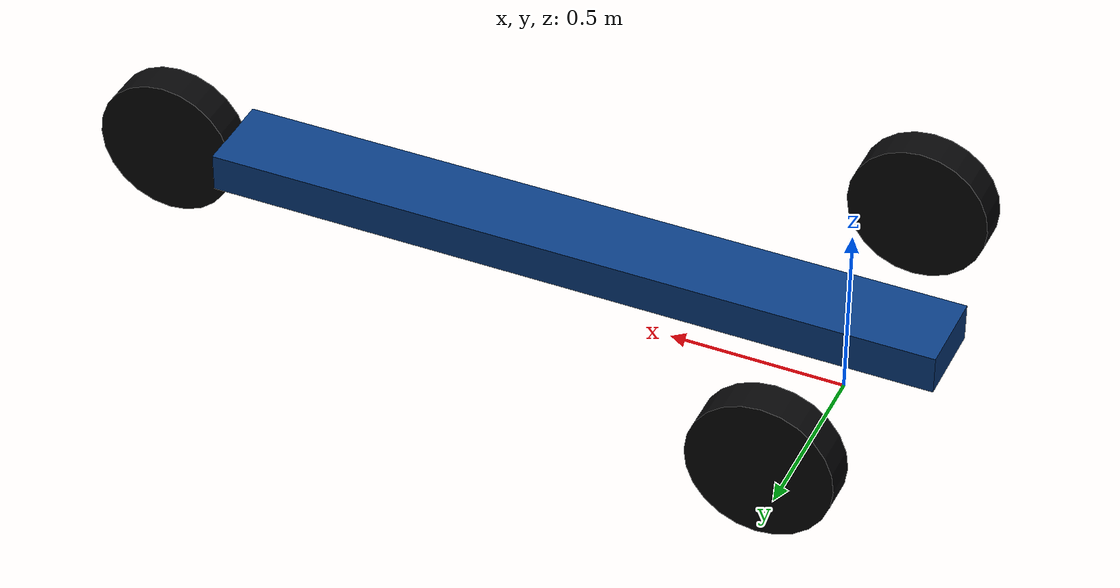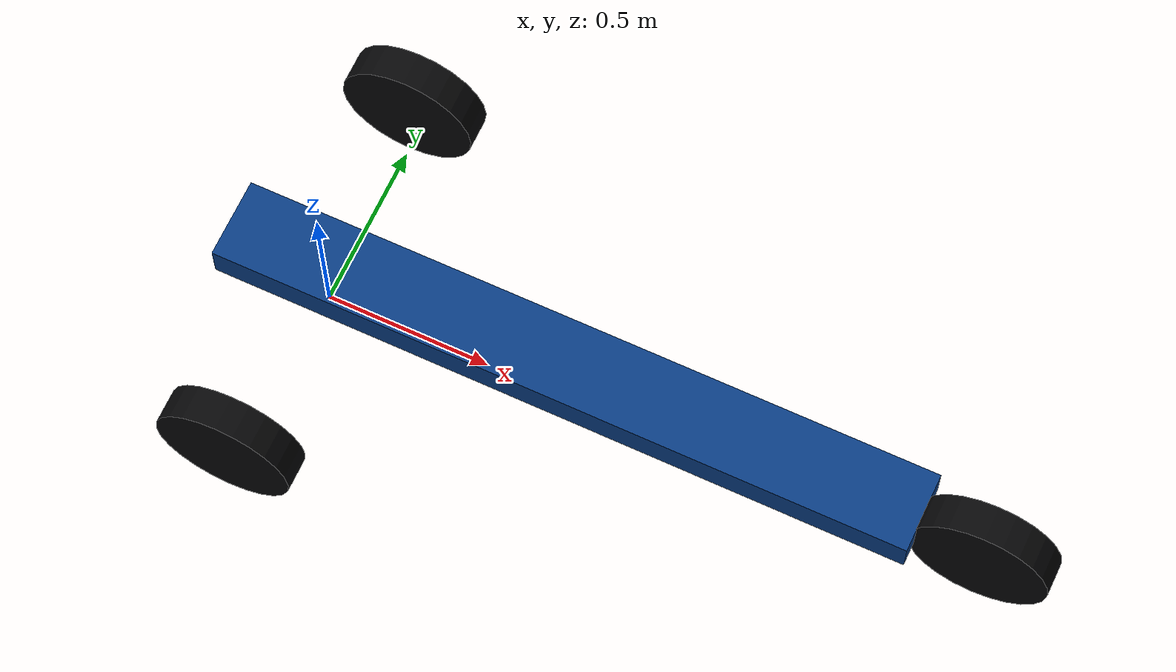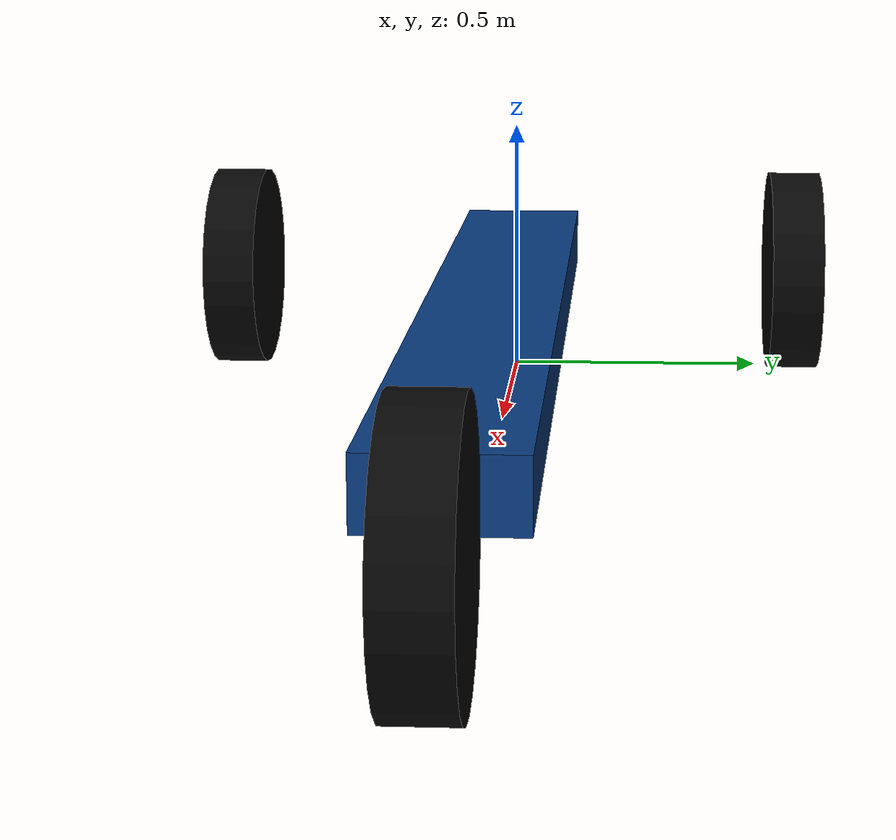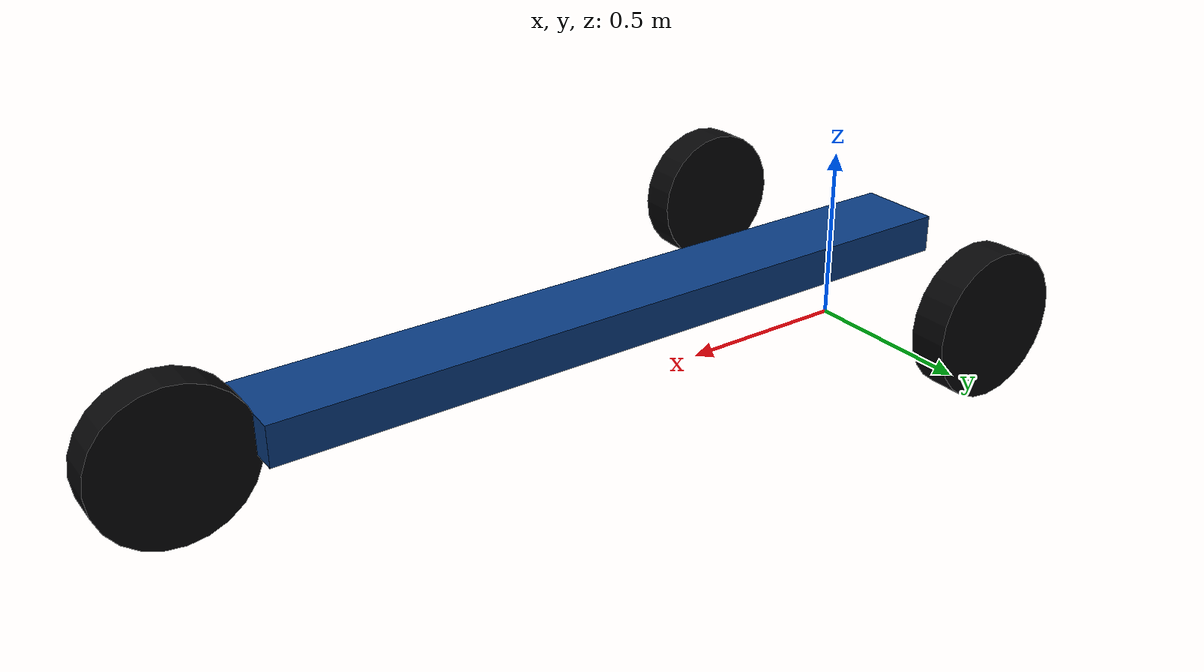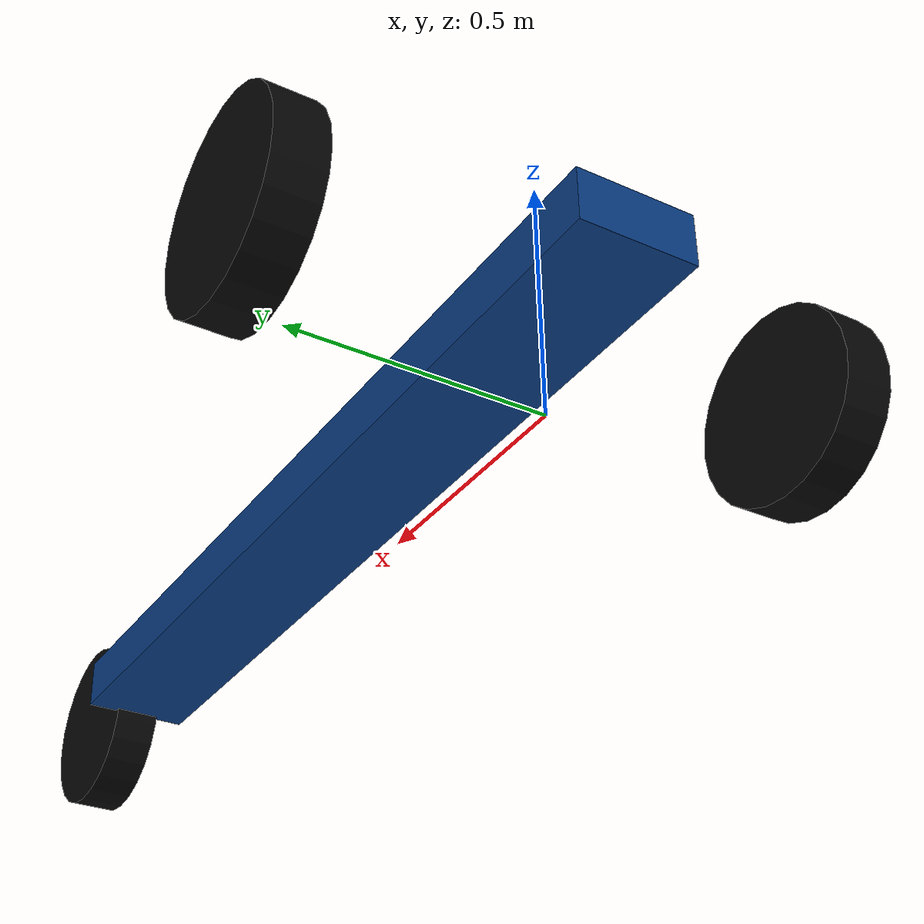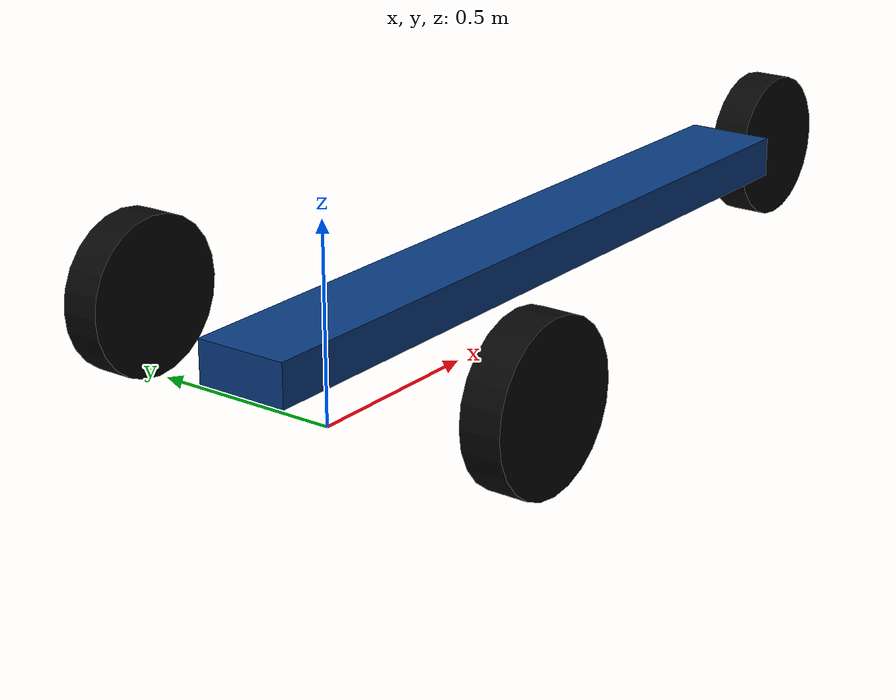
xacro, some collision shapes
<?xml version="1.0"?>
<robot xmlns:xacro="http://ros.org/wiki/xacro" name="etrike">
  <xacro:property name="wheel_base" value="2.000"/>
  <xacro:property name="rear_track" value="1.150"/>
  <xacro:property name="half_rear_track" value="0.575"/>
  <xacro:property name="wheel_radius" value="0.203"/>
  <xacro:property name="wheel_width" value="0.102"/>
  <xacro:property name="max_steer_angle" value="0.747"/>

  <xacro:property name="overall_length" value="2.635"/>
  <xacro:property name="overall_width" value="1.300"/>
  <xacro:property name="overall_height" value="1.700"/>
  <xacro:property name="ground_clearance" value="0.170"/>

  <!-- Estimated split; replace after measuring the physical vehicle. -->
  <xacro:property name="front_overhang" value="0.350"/>
  <xacro:property name="rear_overhang" value="0.285"/>

  <material name="body_blue"><color rgba="0.035 0.235 0.510 1.0"/></material>
  <material name="tire_black"><color rgba="0.025 0.025 0.030 1.0"/></material>

  <link name="base_footprint"/>

  <link name="base_link">
    <!--
      One closed, undecorated Bajaj-style visual body. A small convex collision
      decomposition follows the same envelope and leaves all wheels external.
    -->
    <inertial>
      <origin xyz="0.550 0 0.800" rpy="0 0 0"/>
      <mass value="337.0"/>
      <inertia ixx="80.88" ixy="0" ixz="0" iyy="152.75" iyz="0" izz="152.75"/>
    </inertial>

    <visual name="solid_body">
      <origin xyz="0 0 0" rpy="0 0 0"/>
      <geometry>
        <mesh filename="package://etrike_vehicle_description/meshes/etrike_body.obj" scale="1 1 1"/>
      </geometry>
      <material name="body_blue"/>
    </visual>

    <collision name="chassis_collision">
      <origin xyz="0.765 0 0.225" rpy="0 0 0"/>
      <geometry><box size="2.100 0.240 0.110"/></geometry>
    </collision>
    <collision name="lower_body_collision">
      <origin xyz="0.583 0 0.550" rpy="0 0 0"/>
      <geometry><box size="1.735 0.980 0.550"/></geometry>
    </collision>
    <collision name="cabin_collision">
      <origin xyz="0.550 0 1.245" rpy="0 0 0"/>
      <geometry><box size="1.650 1.200 0.830"/></geometry>
    </collision>
    <collision name="sloped_front_collision">
      <origin xyz="1.750 0 0.800" rpy="0 0.480 0"/>
      <geometry><box size="0.900 0.980 0.240"/></geometry>
    </collision>
    <collision name="front_face_collision">
      <origin xyz="2.250 0 0.690" rpy="0 0 0"/>
      <geometry><box size="0.200 0.980 0.500"/></geometry>
    </collision>
  </link>

  <joint name="base_footprint_joint" type="fixed">
    <parent link="base_footprint"/>
    <child link="base_link"/>
    <origin xyz="0 0 0" rpy="0 0 0"/>
  </joint>

  <link name="rear_left_wheel_link">
    <inertial>
      <origin xyz="0 0 0" rpy="0 0 0"/>
      <mass value="8.0"/>
      <inertia ixx="0.0894" ixy="0" ixz="0" iyy="0.1648" iyz="0" izz="0.0894"/>
    </inertial>
    <visual name="rear_left_tire">
      <origin xyz="0 0 0" rpy="1.57079632679 0 0"/>
      <geometry><cylinder radius="${wheel_radius}" length="${wheel_width}"/></geometry>
      <material name="tire_black"/>
    </visual>
    <collision>
      <origin xyz="0 0 0" rpy="1.57079632679 0 0"/>
      <geometry><cylinder radius="${wheel_radius}" length="${wheel_width}"/></geometry>
    </collision>
  </link>
  <joint name="rear_left_wheel_joint" type="continuous">
    <parent link="base_link"/>
    <child link="rear_left_wheel_link"/>
    <origin xyz="0 ${half_rear_track} ${wheel_radius}" rpy="0 0 0"/>
    <axis xyz="0 1 0"/>
    <limit effort="120.0" velocity="45.0"/>
    <dynamics damping="0.05" friction="0.02"/>
  </joint>

  <link name="rear_right_wheel_link">
    <inertial>
      <origin xyz="0 0 0" rpy="0 0 0"/>
      <mass value="8.0"/>
      <inertia ixx="0.0894" ixy="0" ixz="0" iyy="0.1648" iyz="0" izz="0.0894"/>
    </inertial>
    <visual name="rear_right_tire">
      <origin xyz="0 0 0" rpy="1.57079632679 0 0"/>
      <geometry><cylinder radius="${wheel_radius}" length="${wheel_width}"/></geometry>
      <material name="tire_black"/>
    </visual>
    <collision>
      <origin xyz="0 0 0" rpy="1.57079632679 0 0"/>
      <geometry><cylinder radius="${wheel_radius}" length="${wheel_width}"/></geometry>
    </collision>
  </link>
  <joint name="rear_right_wheel_joint" type="continuous">
    <parent link="base_link"/>
    <child link="rear_right_wheel_link"/>
    <origin xyz="0 -${half_rear_track} ${wheel_radius}" rpy="0 0 0"/>
    <axis xyz="0 1 0"/>
    <limit effort="120.0" velocity="45.0"/>
    <dynamics damping="0.05" friction="0.02"/>
  </joint>

  <!-- Steering knuckle is at the documented front-wheel center. -->
  <link name="front_steering_link">
    <inertial>
      <origin xyz="-0.030 0 0.180" rpy="0 0 0"/>
      <mass value="1.0"/>
      <inertia ixx="0.0078" ixy="0" ixz="0" iyy="0.0078" iyz="0" izz="0.0006"/>
    </inertial>
    <collision name="steering_carrier_collision">
      <origin xyz="-0.030 0 0.180" rpy="0 0 0"/>
      <geometry><box size="0.060 0.060 0.360"/></geometry>
    </collision>
  </link>
  <joint name="front_steering_joint" type="revolute">
    <parent link="base_link"/>
    <child link="front_steering_link"/>
    <origin xyz="${wheel_base} 0 ${wheel_radius}" rpy="0 0 0"/>
    <axis xyz="0 0 1"/>
    <limit lower="-${max_steer_angle}" upper="${max_steer_angle}" effort="200.0" velocity="1.5"/>
    <dynamics damping="2.0" friction="1.0"/>
  </joint>

  <link name="front_wheel_link">
    <inertial>
      <origin xyz="0 0 0" rpy="0 0 0"/>
      <mass value="8.0"/>
      <inertia ixx="0.0894" ixy="0" ixz="0" iyy="0.1648" iyz="0" izz="0.0894"/>
    </inertial>
    <visual name="front_tire">
      <origin xyz="0 0 0" rpy="1.57079632679 0 0"/>
      <geometry><cylinder radius="${wheel_radius}" length="${wheel_width}"/></geometry>
      <material name="tire_black"/>
    </visual>
    <collision>
      <origin xyz="0 0 0" rpy="1.57079632679 0 0"/>
      <geometry><cylinder radius="${wheel_radius}" length="${wheel_width}"/></geometry>
    </collision>
  </link>
  <joint name="front_wheel_joint" type="continuous">
    <parent link="front_steering_link"/>
    <child link="front_wheel_link"/>
    <origin xyz="0 0 0" rpy="0 0 0"/>
    <axis xyz="0 1 0"/>
    <limit effort="120.0" velocity="45.0"/>
    <dynamics damping="0.05" friction="0.02"/>
  </joint>
</robot>
